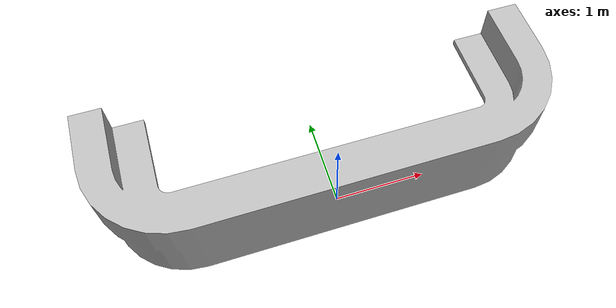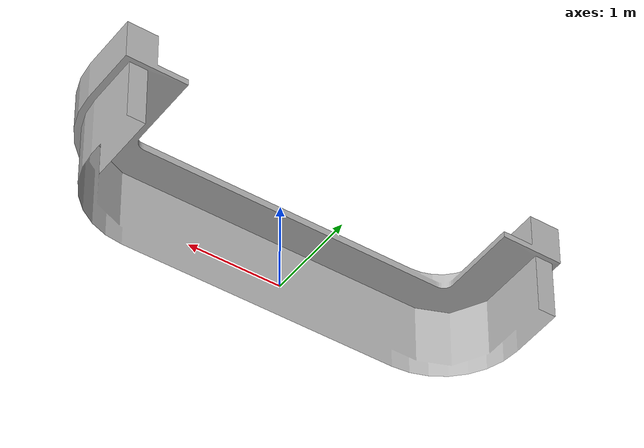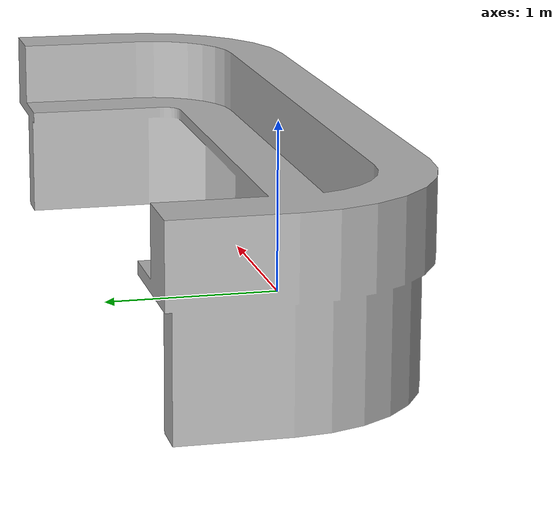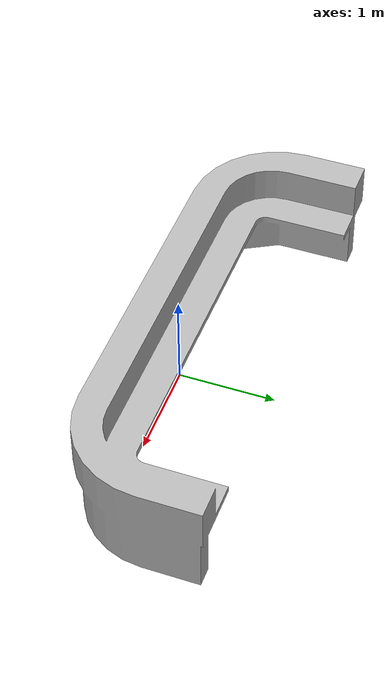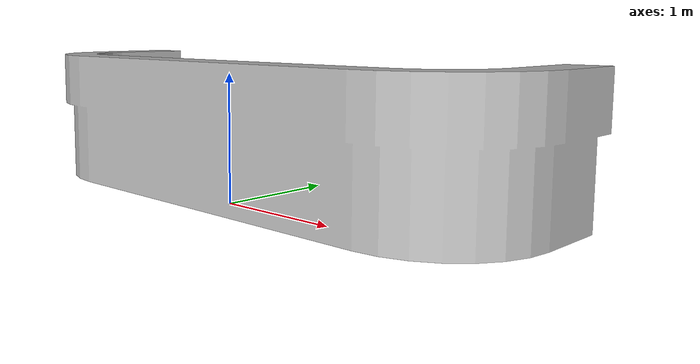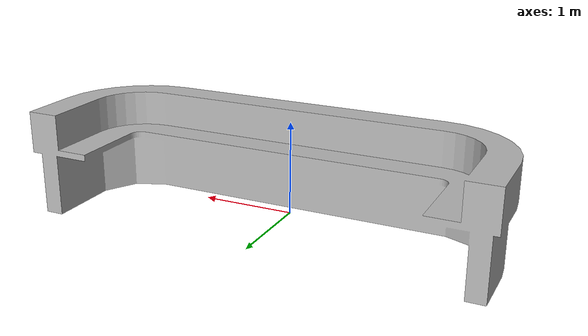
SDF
<?xml version="1.0"?>
<sdf version="1.6">
    <model name="NurseDesk">
        <static>true</static>
        <link name="body">
            <pose>0 0 0 0 0 0</pose>
            <visual name="visual">
                <geometry>
                    <mesh>
                        <uri>https://fuel.gazebosim.org/1.0/openrobotics/models/nursedesk/2/files/meshes/NurseDesk.obj</uri>
                        <scale>0.001 0.001 0.001</scale>
                    </mesh>
                </geometry>
            </visual>
            <collision name="collision">
                <geometry>
                    <mesh>
                        <uri>https://fuel.gazebosim.org/1.0/openrobotics/models/nursedesk/2/files/meshes/NurseDesk.obj</uri>
                    </mesh>
                </geometry>
            </collision>
        </link>
    </model>
</sdf>
